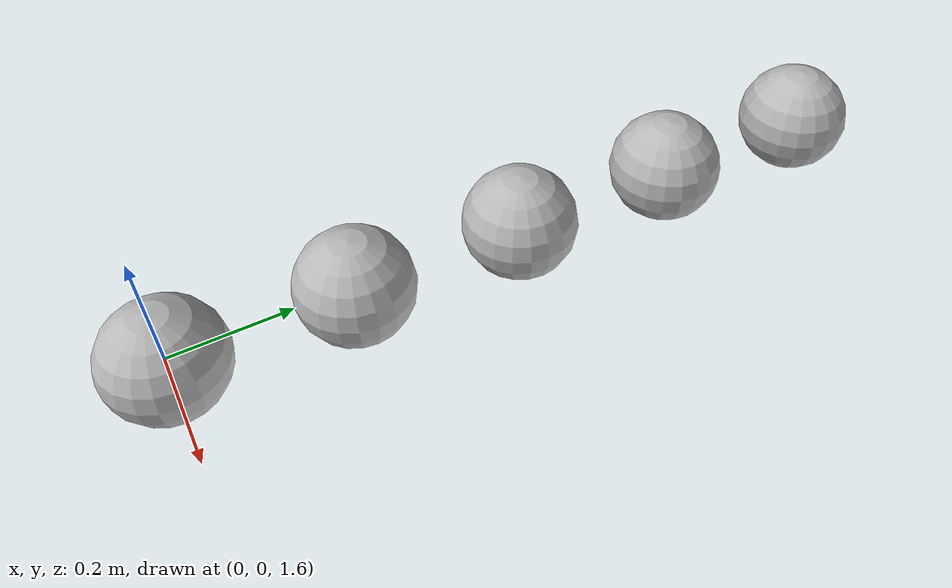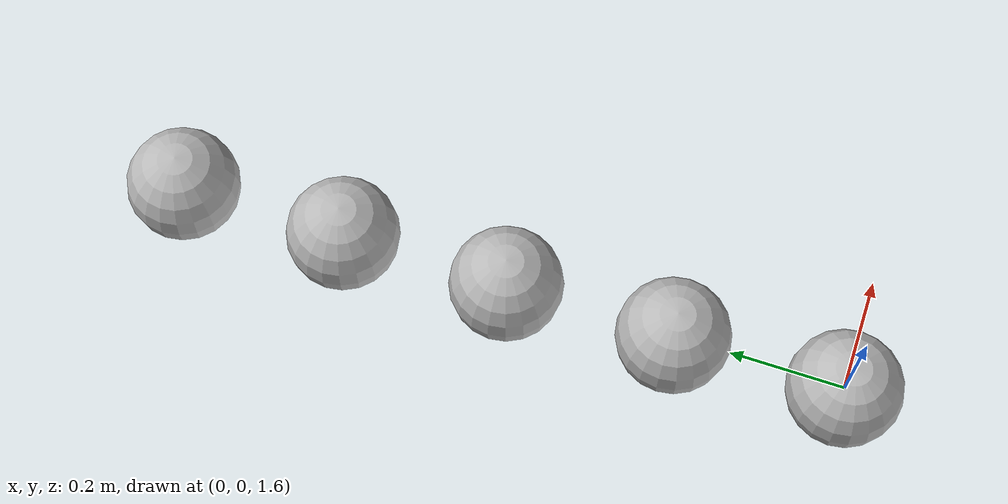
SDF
<?xml version="1.0" ?>
<gazebo version="1.2">
  <world name="default">
    <scene>
      <ambient>0.5 0.5 0.5 1</ambient>
      <background>0.5 0.5 0.5 1</background>
      <shadows>false</shadows>
    </scene>
    <include><uri>model://sun</uri></include>
    <physics type="ode">
      <gravity>0.0 0.0 -10.0</gravity>
      <ode>
        <solver>
          <type>quick</type>
          <dt>0.001</dt>
          <iters>100</iters>
          <sor>1.3</sor>
        </solver>
        <constraints>
          <cfm>0.0</cfm>
          <erp>1.0</erp>
          <contact_max_correcting_vel>1000.0</contact_max_correcting_vel>
          <contact_surface_layer>0.0</contact_surface_layer>
        </constraints>
      </ode>
      <update_rate>300</update_rate>
    </physics>
    <model name="model_0">
      <pose>0.0 0.0 2.1 0 0.0 0.0</pose>
      <link name="link_1">
        <velocity_decay>
          <linear>0.0</linear>
          <angular>0.0</angular>
        </velocity_decay>
        <pose>0.0 0.0 0.0 0.0 0.0 0.0</pose>
        <inertial>
          <pose>0.0 0.0 -0.5 0.0 0.0 0.0</pose>
          <inertia>
            <ixx>0.01</ixx>
            <ixy>0.0</ixy>
            <ixz>0.0</ixz>
            <iyy>0.01</iyy>
            <iyz>0.0</iyz>
            <izz>0.01</izz>
          </inertia>
          <mass>1.0</mass>
        </inertial>
        <visual name="visual_sphere">
          <pose>0.0 0.0 -0.5 0.0 0.0 0.0</pose>
          <geometry>
            <sphere>
              <radius>0.1</radius>
            </sphere>
          </geometry>
          <material>
            <script>Gazebo/Red</script>
          </material>
          <laser_retro>100.0</laser_retro>
        </visual>
        <collision name="collision_sphere">
          <pose>0.0 0.0 -0.5 0.0 0.0 0.0</pose>
          <max_contacts>250</max_contacts>
          <geometry>
            <sphere>
              <radius>0.1</radius>
            </sphere>
          </geometry>
          <surface>
            <friction>
              <ode>
                <mu>0.5</mu>
                <mu2>0.2</mu2>
                <fdir1>1.0 0 0</fdir1>
                <slip1>0</slip1>
                <slip2>0</slip2>
              </ode>
            </friction>
            <bounce>
              <restitution_coefficient>0</restitution_coefficient>
              <threshold>1000000.0</threshold>
            </bounce>
            <contact>
              <ode>
                <soft_cfm>0</soft_cfm>
                <kp>1e15</kp>
                <kd>1e13</kd>
                <max_vel>100.0</max_vel>
                <min_depth>0.0001</min_depth>
              </ode>
            </contact>
          </surface>
          <laser_retro>100.0</laser_retro>
        </collision>
        <gravity>true</gravity>
        <self_collide>true</self_collide>
        <kinematic>false</kinematic>
      </link>
      <joint name="joint_0" type="prismatic">
        <parent>world</parent>
        <child>link_1</child>
        <pose>0.0 0.0 0.0 0.0 0.0 0.0</pose>
        <axis>
          <limit>
            <lower>0</lower>
            <upper>0</upper>
            <effort>1000</effort>
            <velocity>1000</velocity>
          </limit>
          <xyz>0.0 0.0 1.0</xyz>
        </axis>
        <physics>
          <ode>
            <cfm>0.0</cfm>
            <bounce>0.0</bounce>
            <max_force>1000.0</max_force>
            <velocity>0.0</velocity>
            <fudge_factor>0.0</fudge_factor>
            <limit>
              <cfm>0.0</cfm>
              <erp>0.2</erp>
            </limit>
          </ode>
        </physics>
      </joint>
      <static>false</static>
    </model>
    <model name="model_1">
      <pose>0.0 0.3 2.1 0 0.0 0.0</pose>
      <link name="link_1">
        <velocity_decay>
          <linear>0.0</linear>
          <angular>0.0</angular>
        </velocity_decay>
        <pose>0.0 0.0 0.0 0.0 0.0 0.0</pose>
        <inertial>
          <pose>0.0 0.0 -0.5 0.0 0.0 0.0</pose>
          <inertia>
            <ixx>0.01</ixx>
            <ixy>0.0</ixy>
            <ixz>0.0</ixz>
            <iyy>0.01</iyy>
            <iyz>0.0</iyz>
            <izz>0.01</izz>
          </inertia>
          <mass>1.0</mass>
        </inertial>
        <visual name="visual_sphere">
          <pose>0.0 0.0 -0.5 0.0 0.0 0.0</pose>
          <geometry>
            <sphere>
              <radius>0.1</radius>
            </sphere>
          </geometry>
          <material>
            <script>Gazebo/Red</script>
          </material>
          <laser_retro>100.0</laser_retro>
        </visual>
        <collision name="collision_sphere">
          <pose>0.0 0.0 -0.5 0.0 0.0 0.0</pose>
          <max_contacts>250</max_contacts>
          <geometry>
            <sphere>
              <radius>0.1</radius>
            </sphere>
          </geometry>
          <surface>
            <friction>
              <ode>
                <mu>0.5</mu>
                <mu2>0.2</mu2>
                <fdir1>1.0 0 0</fdir1>
                <slip1>0</slip1>
                <slip2>0</slip2>
              </ode>
            </friction>
            <bounce>
              <restitution_coefficient>0</restitution_coefficient>
              <threshold>1000000.0</threshold>
            </bounce>
            <contact>
              <ode>
                <soft_cfm>0</soft_cfm>
                <kp>1e15</kp>
                <kd>1e13</kd>
                <max_vel>100.0</max_vel>
                <min_depth>0.0001</min_depth>
              </ode>
            </contact>
          </surface>
          <laser_retro>100.0</laser_retro>
        </collision>
        <gravity>true</gravity>
        <self_collide>true</self_collide>
        <kinematic>false</kinematic>
      </link>
      <joint name="joint_0" type="prismatic">
        <parent>world</parent>
        <child>link_1</child>
        <pose>0.0 0.0 0.0 0.0 0.0 0.0</pose>
        <axis>
          <limit>
            <lower>0</lower>
            <upper>0</upper>
            <effort>1000</effort>
            <velocity>1000</velocity>
          </limit>
          <xyz>0.0 0.0 1.0</xyz>
        </axis>
        <physics>
          <ode>
            <cfm>0.0</cfm>
            <bounce>0.0</bounce>
            <max_force>1000.0</max_force>
            <velocity>0.0</velocity>
            <fudge_factor>0.0</fudge_factor>
            <limit>
              <cfm>3.0</cfm>
              <erp>1.0</erp>
            </limit>
          </ode>
        </physics>
      </joint>
      <static>false</static>
    </model>
    <model name="model_2">
      <pose>0.0 0.6 2.1 0 0.0 0.0</pose>
      <link name="link_1">
        <pose>0.0 0.0 0.0 0.0 0.0 0.0</pose>
        <inertial>
          <pose>0.0 0.0 -0.5 0.0 0.0 0.0</pose>
          <inertia>
            <ixx>0.01</ixx>
            <ixy>0.0</ixy>
            <ixz>0.0</ixz>
            <iyy>0.01</iyy>
            <iyz>0.0</iyz>
            <izz>0.01</izz>
          </inertia>
          <mass>1.0</mass>
        </inertial>
        <visual name="visual_sphere">
          <pose>0.0 0.0 -0.5 0.0 0.0 0.0</pose>
          <geometry>
            <sphere>
              <radius>0.1</radius>
            </sphere>
          </geometry>
          <material>
            <script>Gazebo/Red</script>
          </material>
          <laser_retro>100.0</laser_retro>
        </visual>
        <collision name="collision_sphere">
          <pose>0.0 0.0 -0.5 0.0 0.0 0.0</pose>
          <max_contacts>250</max_contacts>
          <geometry>
            <sphere>
              <radius>0.1</radius>
            </sphere>
          </geometry>
          <surface>
            <friction>
              <ode>
                <mu>0.5</mu>
                <mu2>0.2</mu2>
                <fdir1>1.0 0 0</fdir1>
                <slip1>0</slip1>
                <slip2>0</slip2>
              </ode>
            </friction>
            <bounce>
              <restitution_coefficient>0</restitution_coefficient>
              <threshold>1000000.0</threshold>
            </bounce>
            <contact>
              <ode>
                <soft_cfm>0</soft_cfm>
                <kp>1e15</kp>
                <kd>1e13</kd>
                <max_vel>100.0</max_vel>
                <min_depth>0.0001</min_depth>
              </ode>
            </contact>
          </surface>
          <laser_retro>100.0</laser_retro>
        </collision>
        <gravity>true</gravity>
        <self_collide>true</self_collide>
        <kinematic>false</kinematic>
      </link>
      <joint name="joint_0" type="prismatic">
        <parent>world</parent>
        <child>link_1</child>
        <pose>0.0 0.0 0.0 0.0 0.0 0.0</pose>
        <axis>
          <limit>
            <lower>0</lower>
            <upper>0</upper>
            <effort>1000</effort>
            <velocity>1000</velocity>
          </limit>
          <xyz>0.0 0.0 1.0</xyz>
        </axis>
        <physics>
          <ode>
            <cfm>0.0</cfm>
            <bounce>0.0</bounce>
            <max_force>1000.0</max_force>
            <velocity>0.0</velocity>
            <fudge_factor>0.0</fudge_factor>
            <limit>
              <cfm>6.0</cfm>
              <erp>1.0</erp>
            </limit>
          </ode>
        </physics>
      </joint>
      <static>false</static>
    </model>
    <model name="model_3">
      <pose>0.0 0.9 2.1 0 0.0 0.0</pose>
      <link name="link_1">
        <pose>0.0 0.0 0.0 0.0 0.0 0.0</pose>
        <inertial>
          <pose>0.0 0.0 -0.5 0.0 0.0 0.0</pose>
          <inertia>
            <ixx>0.01</ixx>
            <ixy>0.0</ixy>
            <ixz>0.0</ixz>
            <iyy>0.01</iyy>
            <iyz>0.0</iyz>
            <izz>0.01</izz>
          </inertia>
          <mass>1.0</mass>
        </inertial>
        <visual name="visual_sphere">
          <pose>0.0 0.0 -0.5 0.0 0.0 0.0</pose>
          <geometry>
            <sphere>
              <radius>0.1</radius>
            </sphere>
          </geometry>
          <material>
            <script>Gazebo/Red</script>
          </material>
          <laser_retro>100.0</laser_retro>
        </visual>
        <collision name="collision_sphere">
          <pose>0.0 0.0 -0.5 0.0 0.0 0.0</pose>
          <max_contacts>250</max_contacts>
          <geometry>
            <sphere>
              <radius>0.1</radius>
            </sphere>
          </geometry>
          <surface>
            <friction>
              <ode>
                <mu>0.5</mu>
                <mu2>0.2</mu2>
                <fdir1>1.0 0 0</fdir1>
                <slip1>0</slip1>
                <slip2>0</slip2>
              </ode>
            </friction>
            <bounce>
              <restitution_coefficient>0</restitution_coefficient>
              <threshold>1000000.0</threshold>
            </bounce>
            <contact>
              <ode>
                <soft_cfm>0</soft_cfm>
                <kp>1e15</kp>
                <kd>1e13</kd>
                <max_vel>100.0</max_vel>
                <min_depth>0.0001</min_depth>
              </ode>
            </contact>
          </surface>
          <laser_retro>100.0</laser_retro>
        </collision>
        <gravity>true</gravity>
        <self_collide>true</self_collide>
        <kinematic>false</kinematic>
      </link>
      <joint name="joint_0" type="prismatic">
        <parent>world</parent>
        <child>link_1</child>
        <pose>0.0 0.0 0.0 0.0 0.0 0.0</pose>
        <axis>
          <limit>
            <lower>0</lower>
            <upper>0</upper>
            <effort>1000</effort>
            <velocity>1000</velocity>
          </limit>
          <xyz>0.0 0.0 1.0</xyz>
        </axis>
        <physics>
          <ode>
            <cfm>0.0</cfm>
            <bounce>0.0</bounce>
            <max_force>1000.0</max_force>
            <velocity>0.0</velocity>
            <fudge_factor>0.0</fudge_factor>
            <limit>
              <cfm>9.0</cfm>
              <erp>1.0</erp>
            </limit>
          </ode>
        </physics>
      </joint>
      <static>false</static>
    </model>
    <model name="model_4">
      <pose>0.0 1.2 2.1 0 0.0 0.0</pose>
      <link name="link_1">
        <pose>0.0 0.0 0.0 0.0 0.0 0.0</pose>
        <inertial>
          <pose>0.0 0.0 -0.5 0.0 0.0 0.0</pose>
          <inertia>
            <ixx>0.01</ixx>
            <ixy>0.0</ixy>
            <ixz>0.0</ixz>
            <iyy>0.01</iyy>
            <iyz>0.0</iyz>
            <izz>0.01</izz>
          </inertia>
          <mass>1.0</mass>
        </inertial>
        <visual name="visual_sphere">
          <pose>0.0 0.0 -0.5 0.0 0.0 0.0</pose>
          <geometry>
            <sphere>
              <radius>0.1</radius>
            </sphere>
          </geometry>
          <material>
            <script>Gazebo/Red</script>
          </material>
          <laser_retro>100.0</laser_retro>
        </visual>
        <collision name="collision_sphere">
          <pose>0.0 0.0 -0.5 0.0 0.0 0.0</pose>
          <max_contacts>250</max_contacts>
          <geometry>
            <sphere>
              <radius>0.1</radius>
            </sphere>
          </geometry>
          <surface>
            <friction>
              <ode>
                <mu>0.5</mu>
                <mu2>0.2</mu2>
                <fdir1>1.0 0 0</fdir1>
                <slip1>0</slip1>
                <slip2>0</slip2>
              </ode>
            </friction>
            <bounce>
              <restitution_coefficient>0</restitution_coefficient>
              <threshold>1000000.0</threshold>
            </bounce>
            <contact>
              <ode>
                <soft_cfm>0</soft_cfm>
                <kp>1e15</kp>
                <kd>1e13</kd>
                <max_vel>100.0</max_vel>
                <min_depth>0.0001</min_depth>
              </ode>
            </contact>
          </surface>
          <laser_retro>100.0</laser_retro>
        </collision>
        <gravity>true</gravity>
        <self_collide>true</self_collide>
        <kinematic>false</kinematic>
      </link>
      <joint name="joint_0" type="prismatic">
        <parent>world</parent>
        <child>link_1</child>
        <pose>0.0 0.0 0.0 0.0 0.0 0.0</pose>
        <axis>
          <limit>
            <lower>-1.0</lower>
            <upper>1.0</upper>
            <effort>1000</effort>
            <velocity>1000</velocity>
          </limit>
          <xyz>0.0 0.0 1.0</xyz>
        </axis>
      </joint>
      <plugin name="spring_test" filename="libSpringTestPlugin.so">
        <k>111.1111</k>
      </plugin>
      <static>false</static>
    </model>
  </world>
</gazebo>
